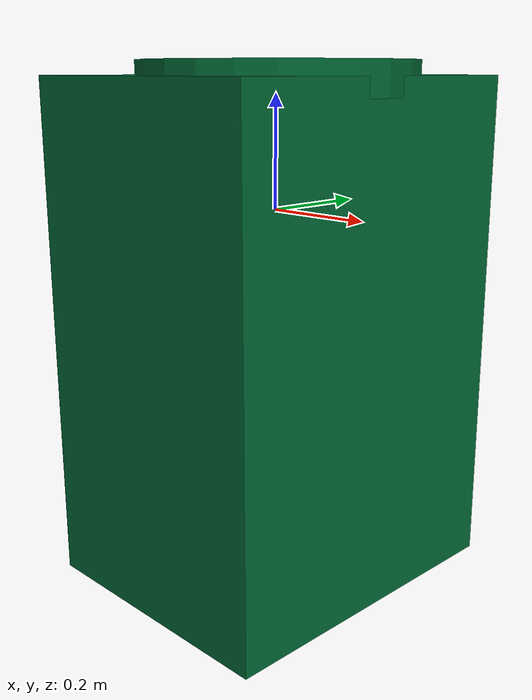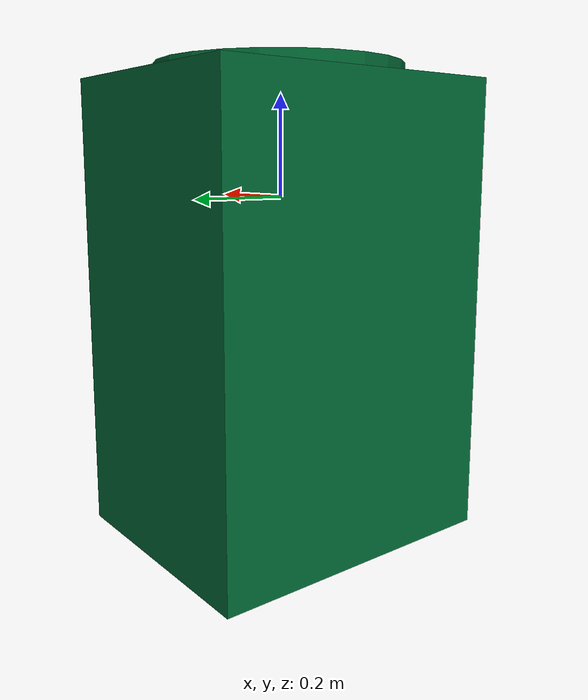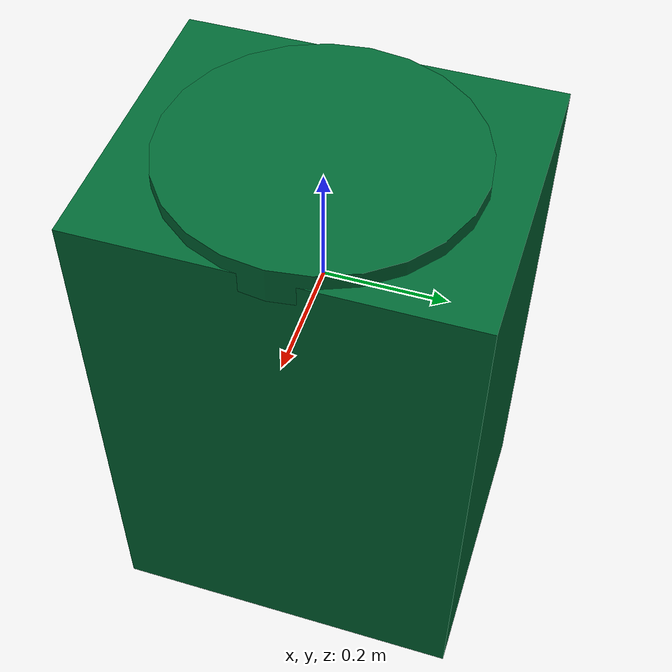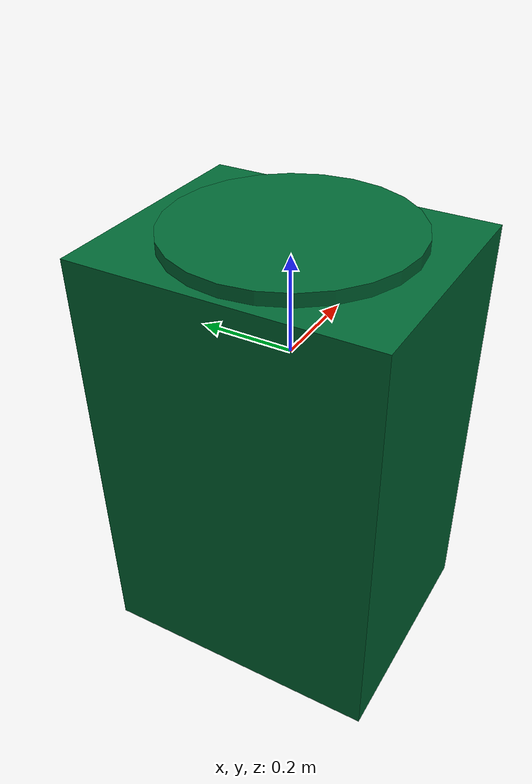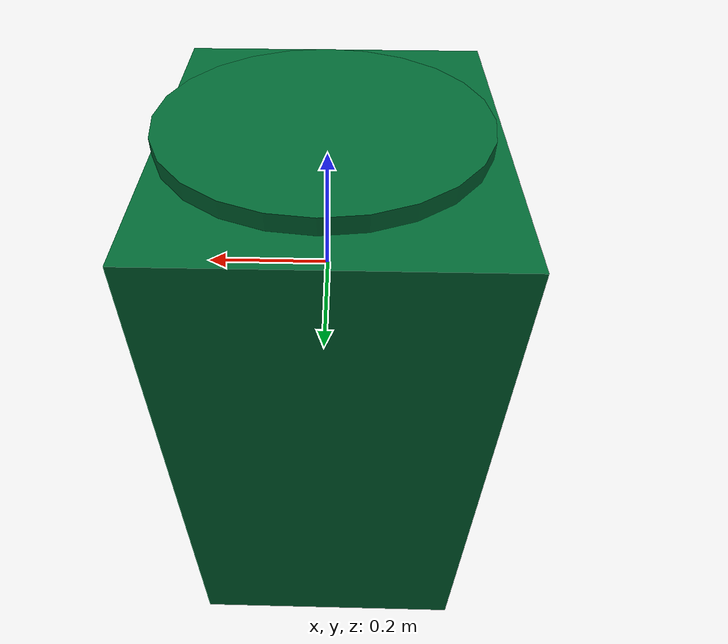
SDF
<?xml version='1.0'?>
<sdf version='1.7'>
  <model name='green_Bin'>
  <static>true</static>
    <link name='link_2'>
      <inertial>
        <mass>0.277562</mass>
        <inertia>
          <ixx>0.0278838</ixx>
          <ixy>0</ixy>
          <ixz>0</ixz>
          <iyy>0.0249412</iyy>
          <iyz>0</iyz>
          <izz>0.0143905</izz>
        </inertia>
        <pose>0 0 0 0 -0 0</pose>
      </inertial>
      <pose>-0.005587 0.000331 -0.225701 0 -0 0</pose>
      <visual name='visual'>
        <geometry>
          <box>
            <size>0.49746 0.612116 0.9115</size>
          </box>
        </geometry>
        <material>
          <ambient>0.0 0.4 0.2 1</ambient>
          <diffuse>0.0 0.4 0.2 1</diffuse>
          <specular>0.1 0.1 0.1 1</specular>
          <lighting>1</lighting>
        </material>
      </visual>
      <collision name='collision'>
        <geometry>
          <box>
            <size>0.49746 0.612116 0.9115</size>
          </box>
        </geometry>
      </collision>
    </link>

    <link name='link_3'>
      <inertial>
        <mass>0.0139645</mass>
        <inertia>
          <ixx>0.000210199</ixx>
          <ixy>0</ixy>
          <ixz>0</ixz>
          <iyy>0.000210199</iyy>
          <iyz>0</iyz>
          <izz>0.000412262</izz>
        </inertia>
      </inertial>
      <pose>0.005589 -0.000325 0.225701 0 -0 0</pose>
      <visual name='visual'>
        <geometry>
          <cylinder>
            <radius>0.24299</radius>
            <length>0.0591249</length>
          </cylinder>
        </geometry>
        <material>
          <ambient>0.0 0.4 0.2 1</ambient>
          <diffuse>0.0 0.4 0.2 1</diffuse>
          <specular>0.1 0.1 0.1 1</specular>
          <lighting>1</lighting>
        </material>
      </visual>
      <collision name='collision'>
        <geometry>
          <cylinder>
            <radius>0.24299</radius>
            <length>0.059125</length>
          </cylinder>
        </geometry>
      </collision>
    </link>
    <static>0</static>
    <allow_auto_disable>1</allow_auto_disable>
  </model>
</sdf>
